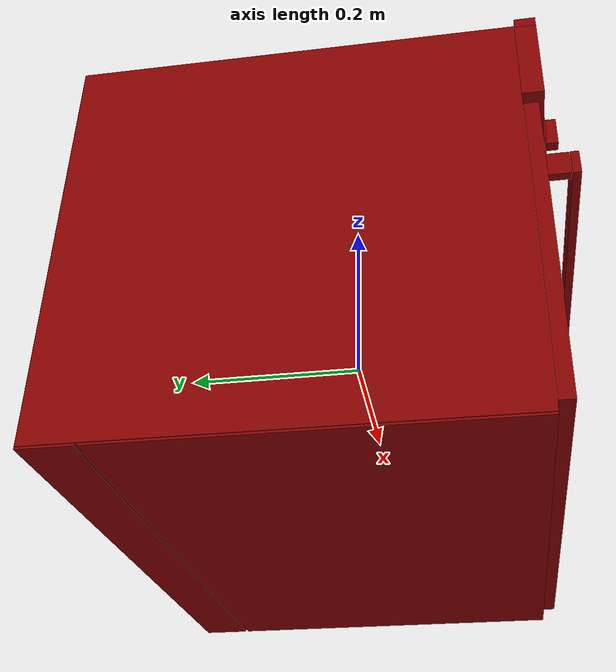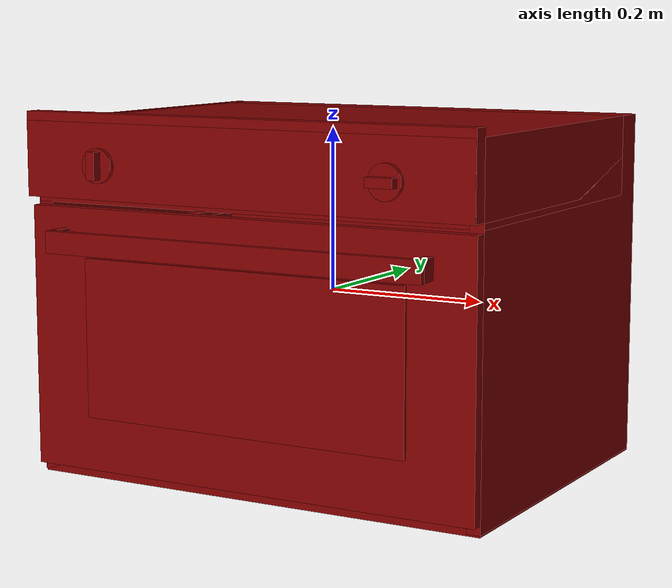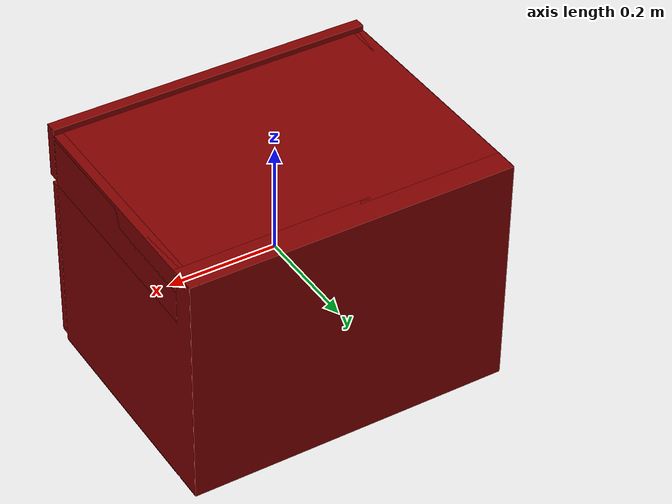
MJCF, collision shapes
<?xml version='1.0' encoding='UTF-8'?>
<mujoco model="model">
  <option timestep="0.002" gravity="0.0 0.0 -9.81"/>
  <compiler angle="radian"/>
  <asset>
    <mesh file="visuals/door.obj" name="door_vis"/>
    <mesh file="visuals/door_Clear.obj" name="door_Clear_vis"/>
    <mesh file="visuals/knob_temp.obj" name="knob_temp_vis"/>
    <mesh file="visuals/knob_time.obj" name="knob_time_vis"/>
    <mesh file="visuals/Body001.obj" name="Body001_vis"/>
    <mesh file="visuals/rack0.obj" name="rack0_vis"/>
    <texture file="visuals/T_BC001.png" name="Body001_material" type="2d"/>
    <material name="Body001_material" rgba="1 1 1 1.0" texture="Body001_material" shininess="0.4472135901451111" specular="2"/>
    <texture file="visuals/T_BC001.png" name="door_material" type="2d"/>
    <material name="door_material" rgba="1 1 1 1.0" texture="door_material" shininess="0.4472135901451111" specular="1"/>
    <texture file="visuals/T_BC001.png" name="door_Clear_material" type="2d"/>
    <material name="door_Clear_material" rgba="1 1 1 0.7405593395233154" texture="door_Clear_material" shininess="0.4472135901451111" specular="0.3103448502657381"/>
    <texture file="visuals/T_BC001.png" name="knob_temp_material" type="2d"/>
    <material name="knob_temp_material" rgba="1 1 1 1.0" texture="knob_temp_material" shininess="0.4472135901451111" specular="0.3103448502657381"/>
    <texture file="visuals/T_BC001.png" name="knob_time_material" type="2d"/>
    <material name="knob_time_material" rgba="1 1 1 1.0" texture="knob_time_material" shininess="0.4472135901451111" specular="0.3103448502657381"/>
    <texture file="visuals/T_BC001.png" name="rack0_material" type="2d"/>
    <material name="rack0_material" rgba="1 1 1 1.0" texture="rack0_material" shininess="0.4472135901451111" specular="5"/>
  </asset>
  <default>
    <default class="visual">
      <geom conaffinity="0" contype="0" group="1" type="mesh"/>
    </default>
    <default class="collision">
      <geom group="0" rgba="0.5 0 0 0.5"/>
    </default>
    <default class="spawn">
      <geom group="0" rgba="1 1 1 0.5" contype="0" conaffinity="0"/>
      <site group="0" rgba="1 1 1 0.5"/>
    </default>
    <default class="region">
      <geom group="1" conaffinity="0" contype="0" rgba="0 1 0 0"/>
    </default>
  </default>
  <worldbody>
    <body>
      <body name="object">
        <geom mesh="Body001_vis" type="mesh" solimp="0.998 0.998 0.001" solref="0.001 1" friction="0.95 0.3 0.1" class="visual" material="Body001_material"/>
        <geom class="collision" type="box" pos="-0.28568238 0.02419269 -0.00361346" size="0.009736110456287861 0.2231244295835495 0.21552397310733795" quat="1.0 0.0 0.0 0.0"/>
        <geom class="collision" type="box" pos="0.28687525 0.02419269 -0.00361346" size="0.008593614213168621 0.2231244295835495 0.21552397310733795" quat="1.0 0.0 0.0 0.0"/>
        <geom class="collision" type="box" pos="0.00043297 0.22251316 -0.00476828" size="0.2947775423526764 0.025683004409074783 0.21667879819869995" quat="1.0 0.0 0.0 0.0"/>
        <geom class="collision" type="box" pos="0.00062850 -0.00794359 0.16648877" size="0.2949744760990143 0.21267753839492798 0.045421745628118515" quat="1.0 0.0 0.0 0.0"/>
        <geom class="collision" type="box" pos="0.00043297 -0.00299917 -0.21458824" size="0.2947786748409271 0.1959325671195984 0.0068379901349544525" quat="1.0 0.0 0.0 0.0"/>
        <geom class="collision" type="box" pos="0.00083669 -0.21007188 0.17231418" size="0.2949744760990143 0.010470174252986908 0.05044955760240555" quat="1.0 0.0 0.0 0.0"/>
        <geom class="collision" type="box" pos="0.00062850 0.00290111 0.15889592" size="0.2949744760990143 0.2018328309059143 0.04544232040643692" quat="1.0 0.0 0.0 0.0"/>
        <geom class="collision" type="box" pos="0.26707131 0.00090971 -0.00271408" size="0.01082796510308981 0.171627014875412 0.002921855775639415" quat="1.0 0.0 0.0 0.0"/>
        <geom class="collision" type="box" pos="0.26707131 0.00090971 -0.02130395" size="0.01082796510308981 0.171627014875412 0.002921855775639415" quat="1.0 0.0 0.0 0.0"/>
        <geom class="collision" type="box" pos="0.26707131 0.00090971 0.06757022" size="0.01082796510308981 0.171627014875412 0.002921855775639415" quat="1.0 0.0 0.0 0.0"/>
        <geom class="collision" type="box" pos="0.26707131 0.00090971 0.04898036" size="0.01082796510308981 0.171627014875412 0.002921855775639415" quat="1.0 0.0 0.0 0.0"/>
        <geom class="collision" type="box" pos="0.26707131 0.00090971 -0.07280751" size="0.01082796510308981 0.171627014875412 0.002921855775639415" quat="1.0 0.0 0.0 0.0"/>
        <geom class="collision" type="box" pos="0.26707131 0.00090971 -0.09273572" size="0.01082796510308981 0.171627014875412 0.0021600862964987755" quat="1.0 0.0 0.0 0.0"/>
        <geom class="collision" type="box" pos="0.26707131 0.00090971 -0.14326037" size="0.01082796510308981 0.171627014875412 0.002921855775639415" quat="1.0 0.0 0.0 0.0"/>
        <geom class="collision" type="box" pos="0.26707131 0.00090971 -0.16242680" size="0.01082796510308981 0.171627014875412 0.002921855775639415" quat="1.0 0.0 0.0 0.0"/>
        <geom class="collision" type="box" pos="-0.26751912 0.00090971 -0.00271408" size="0.01082796510308981 0.171627014875412 0.002921855775639415" quat="1.0 0.0 0.0 0.0"/>
        <geom class="collision" type="box" pos="-0.26751912 0.00090971 -0.02130395" size="0.01082796510308981 0.171627014875412 0.002921855775639415" quat="1.0 0.0 0.0 0.0"/>
        <geom class="collision" type="box" pos="-0.26751912 0.00090971 0.06757022" size="0.01082796510308981 0.171627014875412 0.002921855775639415" quat="1.0 0.0 0.0 0.0"/>
        <geom class="collision" type="box" pos="-0.26751912 0.00090971 0.04898036" size="0.01082796510308981 0.171627014875412 0.002921855775639415" quat="1.0 0.0 0.0 0.0"/>
        <geom class="collision" type="box" pos="-0.26751912 0.00090971 -0.07280751" size="0.01082796510308981 0.171627014875412 0.002921855775639415" quat="1.0 0.0 0.0 0.0"/>
        <geom class="collision" type="box" pos="-0.26751912 0.00090971 -0.09293926" size="0.01082796510308981 0.171627014875412 0.0019565399270504713" quat="1.0 0.0 0.0 0.0"/>
        <geom class="collision" type="box" pos="-0.26751912 0.00090971 -0.14326037" size="0.01082796510308981 0.171627014875412 0.002921855775639415" quat="1.0 0.0 0.0 0.0"/>
        <geom class="collision" type="box" pos="-0.26751912 0.00090971 -0.16242680" size="0.01082796510308981 0.171627014875412 0.002921855775639415" quat="1.0 0.0 0.0 0.0"/>
        <body name="door">
          <joint axis="1.0 0.0 0.0" pos="0.00168474 -0.21431254322539448 -0.207858309894104" limited="true" name="door_joint" range="0.0 1.15" type="hinge" damping="1" frictionloss="1" armature="1" stiffness="2"/>
          <geom mesh="door_vis" type="mesh" solimp="0.998 0.998 0.001" solref="0.001 1" friction="0.95 0.3 0.1" class="visual" material="door_material"/>
          <geom class="collision" type="box" pos="-0.00000021 -0.21818176 -0.04500988" size="0.2128640115261078 0.002218203153461218 0.0963795930147171" quat="1.0 0.0 0.0 0.0"/>
          <geom class="collision" type="box" pos="-0.24133652 -0.23012579 0.07261494" size="0.004729939624667168 0.011433831416070461 0.013017678633332253" quat="1.0 0.0 0.0 0.0"/>
          <geom class="collision" type="box" pos="0.24123476 -0.23000044 0.07201009" size="0.004729939624667168 0.011457936838269234 0.0130176842212677" quat="1.0 0.0 0.0 0.0"/>
          <geom class="collision" type="box" pos="0.00000000 -0.24661914 0.07200870" size="0.24692656099796295 0.004276346415281296 0.013223215006291866" quat="1.0 0.0 0.0 0.0" name="door_handle_main"/>
          <geom class="collision" type="box" pos="0.00168474 -0.20695708 -0.04888402" size="0.29372116923332214 0.007355463225394487 0.158974289894104" quat="1.0 0.0 0.0 0.0" name="door_main"/>
          <body name="door_Clear">
            <geom mesh="door_Clear_vis" type="mesh" solimp="0.998 0.998 0.001" solref="0.001 1" friction="0.95 0.3 0.1" class="visual" material="door_Clear_material"/>
            <geom class="collision" type="box" pos="-0.00000021 -0.21818176 -0.04500988" size="0.2128640115261078 0.002218203153461218 0.0963795930147171" quat="1.0 0.0 0.0 0.0"/>
          </body>
        </body>
        <body name="knob_temp">
          <joint axis="0.0 1.0 0.0" pos="0.19073926 -0.22781995 0.16164415" limited="true" name="knob_temp_joint" range="0.0 3.2288591161895095" type="hinge" damping="0.05" armature="1" frictionloss="0.75"/>
          <geom mesh="knob_temp_vis" type="mesh" solimp="0.998 0.998 0.001" solref="0.001 1" friction="0.95 0.3 0.1" class="visual" material="knob_temp_material"/>
          <geom class="collision" type="cylinder" pos="0.19076850 -0.22412284 0.16185385" size="0.0207841694355011 0.002746423240751028" quat="0.5000000596046448 0.5 -0.5 0.4999999701976776" friction="100 0.5 0.01"/>
          <geom class="collision" type="box" pos="0.19013567 -0.23327791 0.16190881" size="0.005768283735960722 0.006217270623892546 0.016510074958205223" quat="0.7071068286895752 0.0 -0.7071067690849304 0.0" name="knob_temp_main" friction="100 0.5 0.01"/>
        </body>
        <body name="knob_time">
          <joint axis="0.0 1.0 0.0" pos="-0.18856193 -0.22781995 0.16211922" limited="true" name="knob_time_joint" range="0.0 3.9269908169872414" type="hinge" damping="0.05" armature="1" frictionloss="0.75"/>
          <geom mesh="knob_time_vis" type="mesh" solimp="0.998 0.998 0.001" solref="0.001 1" friction="0.95 0.3 0.1" class="visual" material="knob_time_material"/>
          <geom class="collision" type="cylinder" pos="-0.18866593 -0.22412284 0.16204000" size="0.0207841694355011 0.002746423240751028" quat="0.7071068286895752 0.7071067690849304 0.0 0.0" friction="100 0.5 0.01"/>
          <geom class="collision" type="box" pos="-0.18861097 -0.23327791 0.16267282" size="0.005768283735960722 0.006217270623892546 0.016510074958205223" quat="1.0 0.0 0.0 0.0" name="knob_time_main" friction="100 0.5 0.01"/>
        </body>
        <body name="rack0">
          <geom class="region" name="reg_rack0" type="box" pos="0.0012646550000000034 0.0037300350000000065 0.0024764149999999957" size="0.227123085 0.15486640499999998 0.107013495"/>
          <joint axis="0.0 -1.0 0.0" pos="0.00024225 0.00371616 -0.10032751" limited="true" name="rack0_joint" range="0.0 0.175" type="slide" damping="1" frictionloss="1" armature=".01" stiffness="0.05"/>
          <geom mesh="rack0_vis" type="mesh" solimp="0.998 0.998 0.001" solref="0.001 1" friction="0.95 0.3 0.1" class="visual" material="rack0_material"/>
          <geom class="collision" type="box" pos="0.00131339 0.00371614 -0.11326856" size="0.2368174046278 0.1660611629486084 0.0045417011715471745" quat="1.0 0.0 0.0 0.0"/>
          <geom class="collision" type="box" pos="0.25407925 0.00371614 -0.08628313" size="0.01612223871052265 0.17538385093212128 0.003438397077843547" quat="1.0 0.0 0.0 0.0"/>
          <geom class="collision" type="box" pos="0.23849538 0.00380707 -0.09879275" size="0.01632811687886715 0.16729077696800232 0.003958582412451506" quat="0.8114055395126343 0.0 -0.5844835638999939 0.0"/>
          <geom class="collision" type="box" pos="-0.25382623 0.00371614 -0.08628313" size="0.01612223871052265 0.17538385093212128 0.003438397077843547" quat="1.0 0.0 0.0 0.0"/>
          <geom class="collision" type="box" pos="-0.23720454 0.00380707 -0.09879275" size="0.01632811687886715 0.16729077696800232 0.003958582412451506" quat="0.8114057183265686 0.0 0.5844833850860596 0.0"/>
          <geom class="collision" type="box" pos="0.00300830 -0.16852780 -0.08628313" size="0.007515036966651678 0.23547129333019257 0.003438397077843547" quat="0.7071068286895752 0.0 0.0 0.7071067690849304"/>
          <geom class="collision" type="box" pos="0.00300830 -0.16184929 -0.09879275" size="0.0163281187415123 0.23547129333019257 0.003958586603403091" quat="0.5737504959106445 -0.41329213976860046 0.41329216957092285 0.5737504363059998"/>
          <geom class="collision" type="box" pos="0.00300830 0.17581021 -0.08628313" size="0.007515036966651678 0.23547129333019257 0.003438397077843547" quat="0.7071068286895752 0.0 0.0 0.7071067690849304"/>
          <geom class="collision" type="box" pos="0.00300830 0.16901154 -0.09879275" size="0.0163281187415123 0.23547129333019257 0.003958586603403091" quat="0.5737504959106445 0.41329213976860046 -0.41329216957092285 0.5737504363059998"/>
        </body>
        <geom class="region" name="reg_int" type="box" pos="0.00014685000000000392 0.004177540000000007 -0.046926175" size="0.25212546999999996 0.18853539 0.15626003500000002"/>
        <geom class="region" name="reg_main" type="box" pos="7.499999998827889e-08 0.014360459999999992 -9.999999994736442e-09" size="0.298500015 0.23714347 0.22467862"/>
      </body>
    </body>
  </worldbody>
  <actuator>
    <motor name="door_joint_actuator" joint="door_joint" gear="50"/>
    <motor name="knob_temp_joint_actuator" joint="knob_temp_joint" gear="50"/>
    <motor name="knob_time_joint_actuator" joint="knob_time_joint" gear="50"/>
    <motor name="rack0_joint_actuator" joint="rack0_joint" gear="50"/>
  </actuator>
</mujoco>
